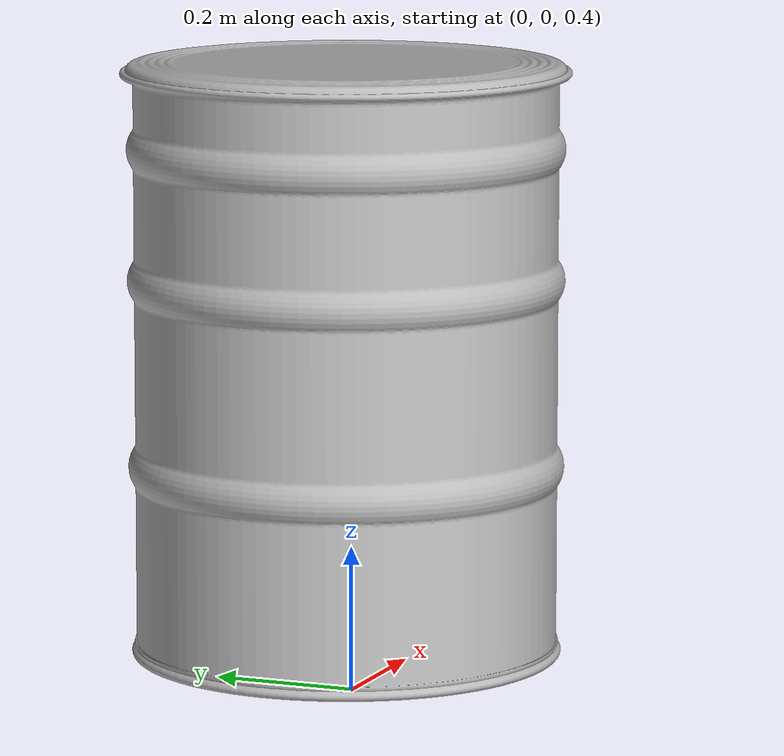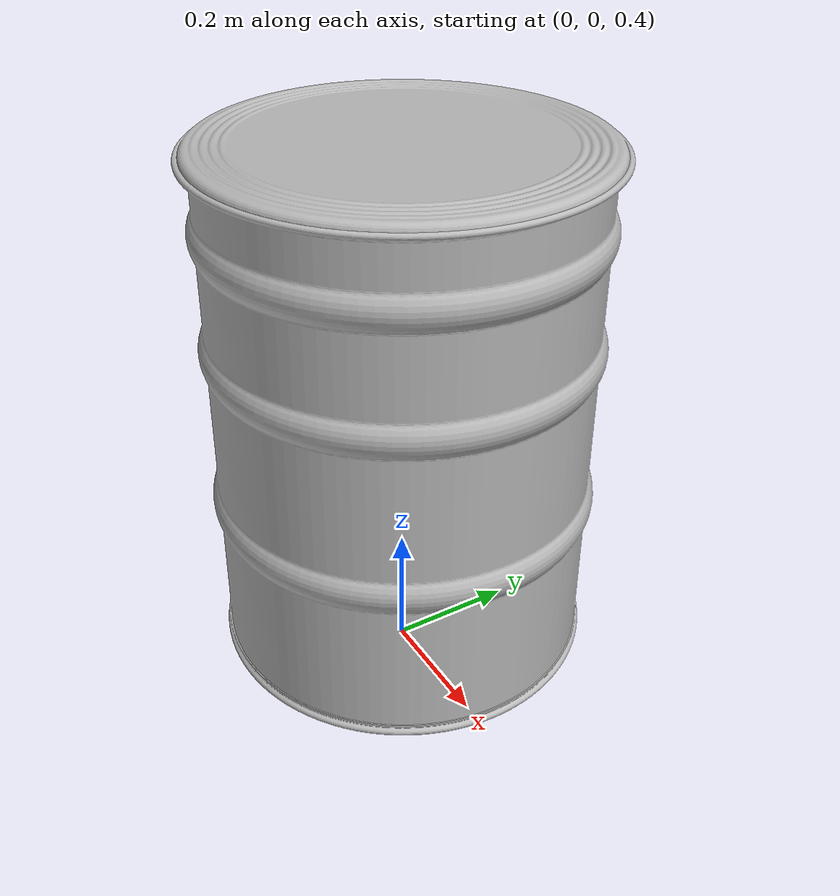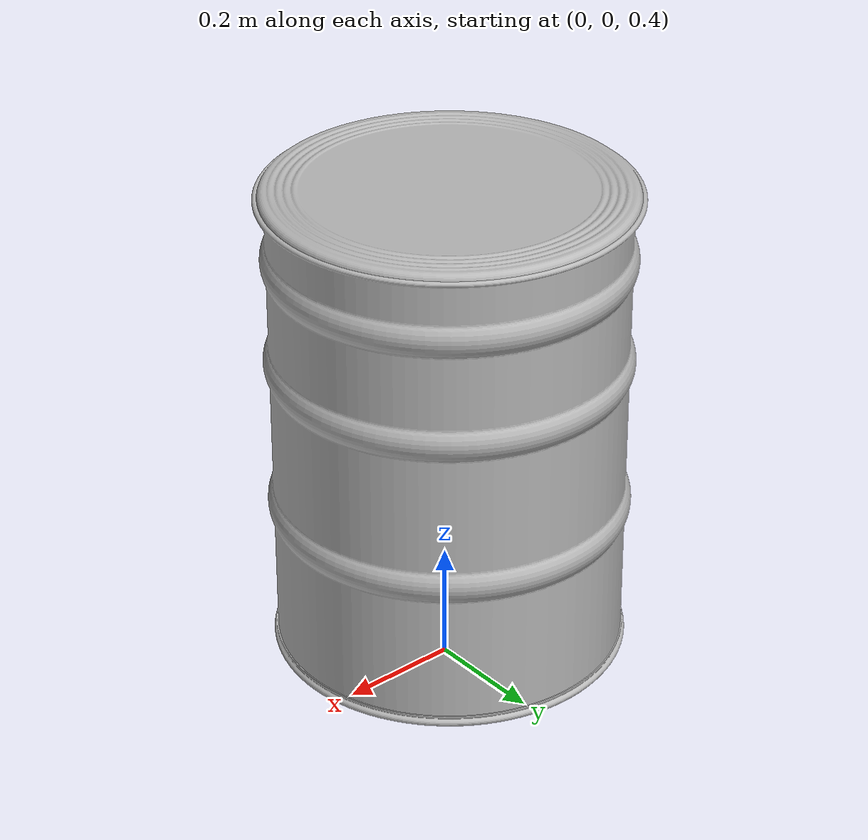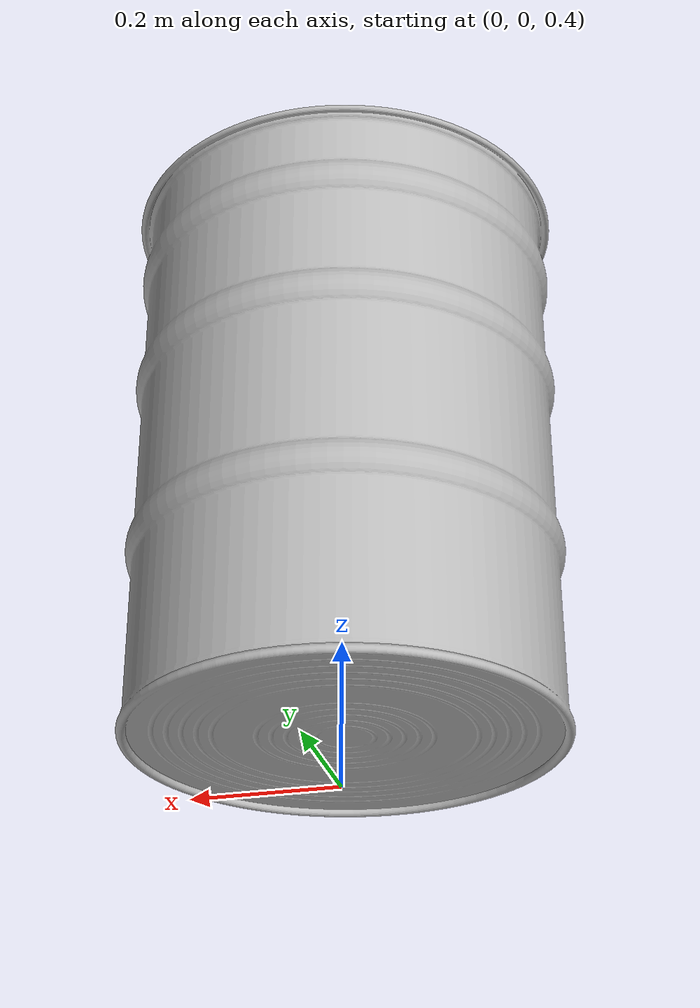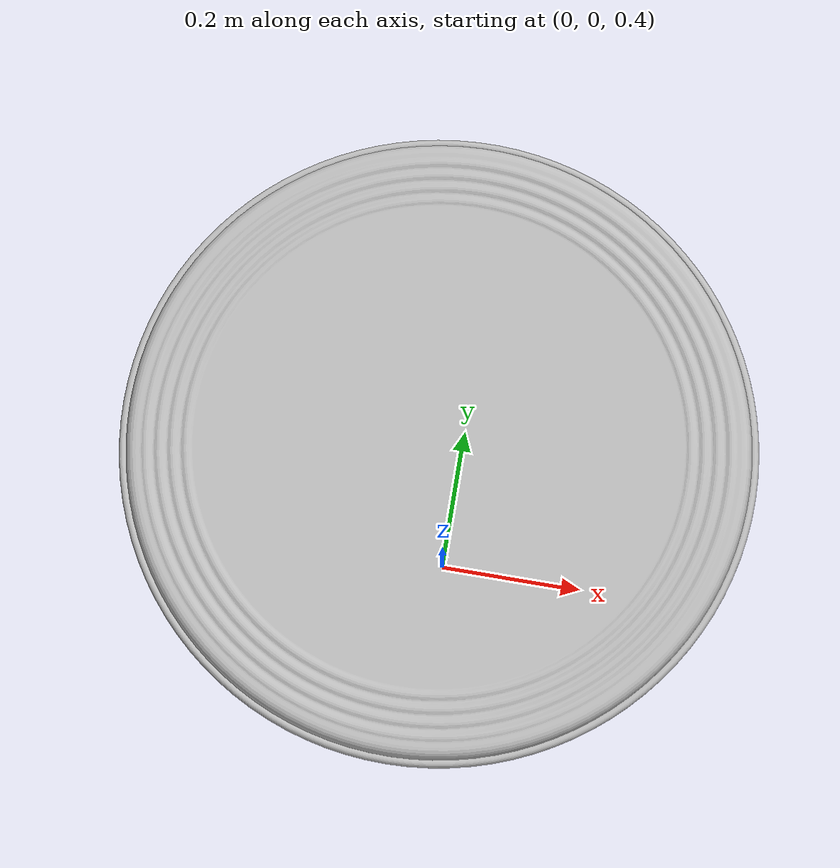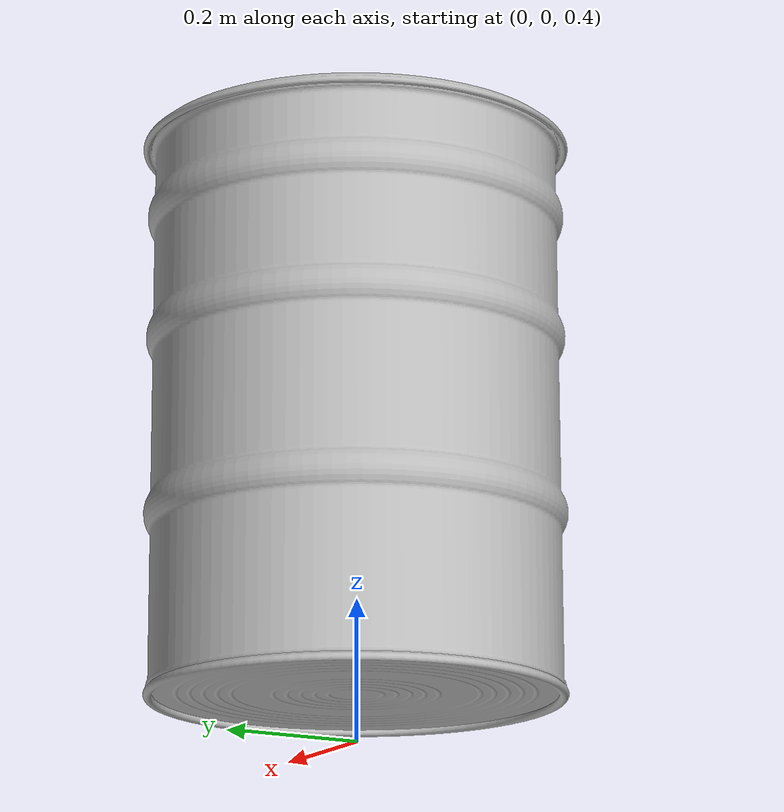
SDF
<?xml version='1.0'?>
<sdf version='1.4'>
  <model name="beer">
    <link name='link'>
      <pose>0 0 0.85 0 0 0</pose>
      <inertial>
        <mass>1</mass>
        <inertia>
          <ixx>0.075833</ixx>
          <ixy>0</ixy>
          <ixz>0</ixz>
          <iyy>0.075883</iyy>
          <iyz>0</iyz>
          <izz>0.045</izz>
        </inertia>
      </inertial>
      <collision name='collision'>
        <pose>0 0 0 0 0 0</pose>
        <geometry>
          <cylinder>
            <radius>0.3000</radius>
            <length>0.800</length>
          </cylinder>
        </geometry>
      </collision>

      <visual name='visual'>
        <pose>-0.03 0.22 -0.054 1.57 0 0</pose>
        <geometry>
          <mesh>
            <uri>model://barrel_50/meshes/barrel_50.stl</uri>
            <scale> 0.01 0.01 0.01 </scale>
          </mesh>
        </geometry>
      </visual>
    </link>
  </model>
</sdf>
